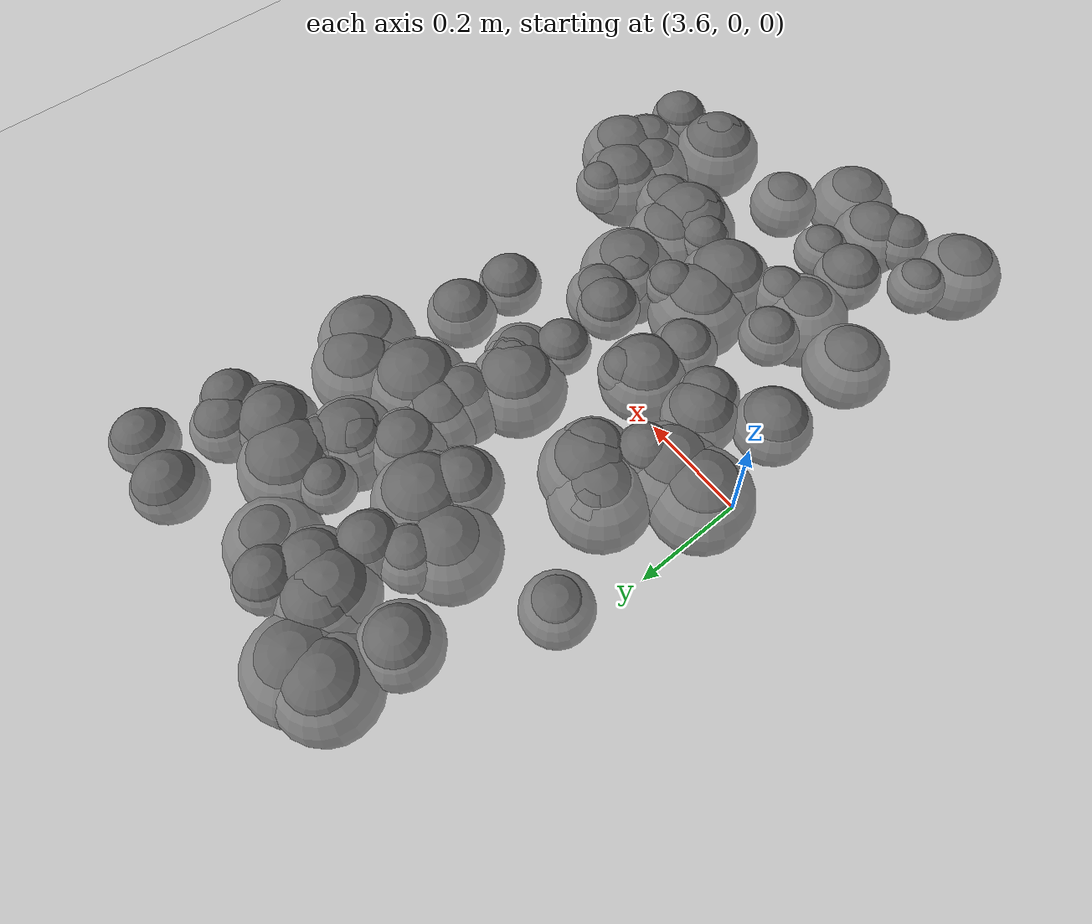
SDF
<sdf version="1.6">
 <world name="high_freq_world">
  <model name="ground_plane">
   <static>true</static>
   <link name="link">
    <collision name="collision">
     <geometry><plane><normal>0 0 1</normal><size>100 100</size></plane></geometry>
     <surface><friction><ode><mu>100.0</mu><mu2>100.0</mu2></ode></friction></surface>
    </collision>
    <visual name="visual">
     <geometry><plane><normal>0 0 1</normal><size>100 100</size></plane></geometry>
     <material><ambient>0.8 0.8 0.8 1</ambient><diffuse>0.8 0.8 0.8 1</diffuse></material>
    </visual>
   </link>
  </model>
  <model name="bump_0">
   <static>true</static>
   <pose>3.684 -0.187 -0.048 0 0 0</pose>
   <link name="link">
    <collision name="collision">
     <geometry><sphere><radius>0.074</radius></sphere></geometry>
     <surface><friction><ode><mu>100.0</mu><mu2>100.0</mu2></ode></friction></surface>
    </collision>
    <visual name="visual">
     <geometry><sphere><radius>0.074</radius></sphere></geometry>
     <material><ambient>0.3 0.3 0.3 1</ambient><diffuse>0.4 0.4 0.4 1</diffuse></material>
    </visual>
   </link>
  </model>
  <model name="bump_7">
   <static>true</static>
   <pose>3.665 0.326 -0.052 0 0 0</pose>
   <link name="link">
    <collision name="collision">
     <geometry><sphere><radius>0.065</radius></sphere></geometry>
     <surface><friction><ode><mu>100.0</mu><mu2>100.0</mu2></ode></friction></surface>
    </collision>
    <visual name="visual">
     <geometry><sphere><radius>0.065</radius></sphere></geometry>
     <material><ambient>0.3 0.3 0.3 1</ambient><diffuse>0.4 0.4 0.4 1</diffuse></material>
    </visual>
   </link>
  </model>
  <model name="bump_14">
   <static>true</static>
   <pose>4.027 -0.248 -0.026 0 0 0</pose>
   <link name="link">
    <collision name="collision">
     <geometry><sphere><radius>0.050</radius></sphere></geometry>
     <surface><friction><ode><mu>100.0</mu><mu2>100.0</mu2></ode></friction></surface>
    </collision>
    <visual name="visual">
     <geometry><sphere><radius>0.050</radius></sphere></geometry>
     <material><ambient>0.3 0.3 0.3 1</ambient><diffuse>0.4 0.4 0.4 1</diffuse></material>
    </visual>
   </link>
  </model>
  <model name="bump_15">
   <static>true</static>
   <pose>4.084 0.092 -0.048 0 0 0</pose>
   <link name="link">
    <collision name="collision">
     <geometry><sphere><radius>0.062</radius></sphere></geometry>
     <surface><friction><ode><mu>100.0</mu><mu2>100.0</mu2></ode></friction></surface>
    </collision>
    <visual name="visual">
     <geometry><sphere><radius>0.062</radius></sphere></geometry>
     <material><ambient>0.3 0.3 0.3 1</ambient><diffuse>0.4 0.4 0.4 1</diffuse></material>
    </visual>
   </link>
  </model>
  <model name="bump_40">
   <static>true</static>
   <pose>3.781 0.136 -0.082 0 0 0</pose>
   <link name="link">
    <collision name="collision">
     <geometry><sphere><radius>0.096</radius></sphere></geometry>
     <surface><friction><ode><mu>100.0</mu><mu2>100.0</mu2></ode></friction></surface>
    </collision>
    <visual name="visual">
     <geometry><sphere><radius>0.096</radius></sphere></geometry>
     <material><ambient>0.3 0.3 0.3 1</ambient><diffuse>0.4 0.4 0.4 1</diffuse></material>
    </visual>
   </link>
  </model>
  <model name="bump_43">
   <static>true</static>
   <pose>4.318 -0.318 -0.040 0 0 0</pose>
   <link name="link">
    <collision name="collision">
     <geometry><sphere><radius>0.056</radius></sphere></geometry>
     <surface><friction><ode><mu>100.0</mu><mu2>100.0</mu2></ode></friction></surface>
    </collision>
    <visual name="visual">
     <geometry><sphere><radius>0.056</radius></sphere></geometry>
     <material><ambient>0.3 0.3 0.3 1</ambient><diffuse>0.4 0.4 0.4 1</diffuse></material>
    </visual>
   </link>
  </model>
  <model name="bump_53">
   <static>true</static>
   <pose>3.889 0.459 -0.047 0 0 0</pose>
   <link name="link">
    <collision name="collision">
     <geometry><sphere><radius>0.061</radius></sphere></geometry>
     <surface><friction><ode><mu>100.0</mu><mu2>100.0</mu2></ode></friction></surface>
    </collision>
    <visual name="visual">
     <geometry><sphere><radius>0.061</radius></sphere></geometry>
     <material><ambient>0.3 0.3 0.3 1</ambient><diffuse>0.4 0.4 0.4 1</diffuse></material>
    </visual>
   </link>
  </model>
  <model name="bump_62">
   <static>true</static>
   <pose>3.907 -0.548 -0.041 0 0 0</pose>
   <link name="link">
    <collision name="collision">
     <geometry><sphere><radius>0.054</radius></sphere></geometry>
     <surface><friction><ode><mu>100.0</mu><mu2>100.0</mu2></ode></friction></surface>
    </collision>
    <visual name="visual">
     <geometry><sphere><radius>0.054</radius></sphere></geometry>
     <material><ambient>0.3 0.3 0.3 1</ambient><diffuse>0.4 0.4 0.4 1</diffuse></material>
    </visual>
   </link>
  </model>
  <model name="bump_71">
   <static>true</static>
   <pose>4.104 -0.136 -0.054 0 0 0</pose>
   <link name="link">
    <collision name="collision">
     <geometry><sphere><radius>0.070</radius></sphere></geometry>
     <surface><friction><ode><mu>100.0</mu><mu2>100.0</mu2></ode></friction></surface>
    </collision>
    <visual name="visual">
     <geometry><sphere><radius>0.070</radius></sphere></geometry>
     <material><ambient>0.3 0.3 0.3 1</ambient><diffuse>0.4 0.4 0.4 1</diffuse></material>
    </visual>
   </link>
  </model>
  <model name="bump_84">
   <static>true</static>
   <pose>4.164 0.464 -0.057 0 0 0</pose>
   <link name="link">
    <collision name="collision">
     <geometry><sphere><radius>0.067</radius></sphere></geometry>
     <surface><friction><ode><mu>100.0</mu><mu2>100.0</mu2></ode></friction></surface>
    </collision>
    <visual name="visual">
     <geometry><sphere><radius>0.067</radius></sphere></geometry>
     <material><ambient>0.3 0.3 0.3 1</ambient><diffuse>0.4 0.4 0.4 1</diffuse></material>
    </visual>
   </link>
  </model>
  <model name="bump_88">
   <static>true</static>
   <pose>3.827 -0.537 -0.037 0 0 0</pose>
   <link name="link">
    <collision name="collision">
     <geometry><sphere><radius>0.066</radius></sphere></geometry>
     <surface><friction><ode><mu>100.0</mu><mu2>100.0</mu2></ode></friction></surface>
    </collision>
    <visual name="visual">
     <geometry><sphere><radius>0.066</radius></sphere></geometry>
     <material><ambient>0.3 0.3 0.3 1</ambient><diffuse>0.4 0.4 0.4 1</diffuse></material>
    </visual>
   </link>
  </model>
  <model name="bump_93">
   <static>true</static>
   <pose>3.948 0.502 -0.041 0 0 0</pose>
   <link name="link">
    <collision name="collision">
     <geometry><sphere><radius>0.063</radius></sphere></geometry>
     <surface><friction><ode><mu>100.0</mu><mu2>100.0</mu2></ode></friction></surface>
    </collision>
    <visual name="visual">
     <geometry><sphere><radius>0.063</radius></sphere></geometry>
     <material><ambient>0.3 0.3 0.3 1</ambient><diffuse>0.4 0.4 0.4 1</diffuse></material>
    </visual>
   </link>
  </model>
  <model name="bump_97">
   <static>true</static>
   <pose>4.083 0.095 -0.041 0 0 0</pose>
   <link name="link">
    <collision name="collision">
     <geometry><sphere><radius>0.056</radius></sphere></geometry>
     <surface><friction><ode><mu>100.0</mu><mu2>100.0</mu2></ode></friction></surface>
    </collision>
    <visual name="visual">
     <geometry><sphere><radius>0.056</radius></sphere></geometry>
     <material><ambient>0.3 0.3 0.3 1</ambient><diffuse>0.4 0.4 0.4 1</diffuse></material>
    </visual>
   </link>
  </model>
  <model name="bump_99">
   <static>true</static>
   <pose>4.136 0.411 -0.049 0 0 0</pose>
   <link name="link">
    <collision name="collision">
     <geometry><sphere><radius>0.067</radius></sphere></geometry>
     <surface><friction><ode><mu>100.0</mu><mu2>100.0</mu2></ode></friction></surface>
    </collision>
    <visual name="visual">
     <geometry><sphere><radius>0.067</radius></sphere></geometry>
     <material><ambient>0.3 0.3 0.3 1</ambient><diffuse>0.4 0.4 0.4 1</diffuse></material>
    </visual>
   </link>
  </model>
  <model name="bump_112">
   <static>true</static>
   <pose>3.829 -0.418 -0.081 0 0 0</pose>
   <link name="link">
    <collision name="collision">
     <geometry><sphere><radius>0.093</radius></sphere></geometry>
     <surface><friction><ode><mu>100.0</mu><mu2>100.0</mu2></ode></friction></surface>
    </collision>
    <visual name="visual">
     <geometry><sphere><radius>0.093</radius></sphere></geometry>
     <material><ambient>0.3 0.3 0.3 1</ambient><diffuse>0.4 0.4 0.4 1</diffuse></material>
    </visual>
   </link>
  </model>
  <model name="bump_117">
   <static>true</static>
   <pose>4.138 -0.346 -0.071 0 0 0</pose>
   <link name="link">
    <collision name="collision">
     <geometry><sphere><radius>0.088</radius></sphere></geometry>
     <surface><friction><ode><mu>100.0</mu><mu2>100.0</mu2></ode></friction></surface>
    </collision>
    <visual name="visual">
     <geometry><sphere><radius>0.088</radius></sphere></geometry>
     <material><ambient>0.3 0.3 0.3 1</ambient><diffuse>0.4 0.4 0.4 1</diffuse></material>
    </visual>
   </link>
  </model>
  <model name="bump_124">
   <static>true</static>
   <pose>4.051 0.113 -0.070 0 0 0</pose>
   <link name="link">
    <collision name="collision">
     <geometry><sphere><radius>0.094</radius></sphere></geometry>
     <surface><friction><ode><mu>100.0</mu><mu2>100.0</mu2></ode></friction></surface>
    </collision>
    <visual name="visual">
     <geometry><sphere><radius>0.094</radius></sphere></geometry>
     <material><ambient>0.3 0.3 0.3 1</ambient><diffuse>0.4 0.4 0.4 1</diffuse></material>
    </visual>
   </link>
  </model>
  <model name="bump_125">
   <static>true</static>
   <pose>3.825 -0.318 -0.040 0 0 0</pose>
   <link name="link">
    <collision name="collision">
     <geometry><sphere><radius>0.058</radius></sphere></geometry>
     <surface><friction><ode><mu>100.0</mu><mu2>100.0</mu2></ode></friction></surface>
    </collision>
    <visual name="visual">
     <geometry><sphere><radius>0.058</radius></sphere></geometry>
     <material><ambient>0.3 0.3 0.3 1</ambient><diffuse>0.4 0.4 0.4 1</diffuse></material>
    </visual>
   </link>
  </model>
  <model name="bump_127">
   <static>true</static>
   <pose>4.087 0.259 -0.064 0 0 0</pose>
   <link name="link">
    <collision name="collision">
     <geometry><sphere><radius>0.078</radius></sphere></geometry>
     <surface><friction><ode><mu>100.0</mu><mu2>100.0</mu2></ode></friction></surface>
    </collision>
    <visual name="visual">
     <geometry><sphere><radius>0.078</radius></sphere></geometry>
     <material><ambient>0.3 0.3 0.3 1</ambient><diffuse>0.4 0.4 0.4 1</diffuse></material>
    </visual>
   </link>
  </model>
  <model name="bump_128">
   <static>true</static>
   <pose>4.254 -0.588 -0.050 0 0 0</pose>
   <link name="link">
    <collision name="collision">
     <geometry><sphere><radius>0.080</radius></sphere></geometry>
     <surface><friction><ode><mu>100.0</mu><mu2>100.0</mu2></ode></friction></surface>
    </collision>
    <visual name="visual">
     <geometry><sphere><radius>0.080</radius></sphere></geometry>
     <material><ambient>0.3 0.3 0.3 1</ambient><diffuse>0.4 0.4 0.4 1</diffuse></material>
    </visual>
   </link>
  </model>
  <model name="bump_139">
   <static>true</static>
   <pose>4.129 -0.228 -0.083 0 0 0</pose>
   <link name="link">
    <collision name="collision">
     <geometry><sphere><radius>0.100</radius></sphere></geometry>
     <surface><friction><ode><mu>100.0</mu><mu2>100.0</mu2></ode></friction></surface>
    </collision>
    <visual name="visual">
     <geometry><sphere><radius>0.100</radius></sphere></geometry>
     <material><ambient>0.3 0.3 0.3 1</ambient><diffuse>0.4 0.4 0.4 1</diffuse></material>
    </visual>
   </link>
  </model>
  <model name="bump_140">
   <static>true</static>
   <pose>3.969 0.381 -0.069 0 0 0</pose>
   <link name="link">
    <collision name="collision">
     <geometry><sphere><radius>0.095</radius></sphere></geometry>
     <surface><friction><ode><mu>100.0</mu><mu2>100.0</mu2></ode></friction></surface>
    </collision>
    <visual name="visual">
     <geometry><sphere><radius>0.095</radius></sphere></geometry>
     <material><ambient>0.3 0.3 0.3 1</ambient><diffuse>0.4 0.4 0.4 1</diffuse></material>
    </visual>
   </link>
  </model>
  <model name="bump_155">
   <static>true</static>
   <pose>3.799 0.681 -0.070 0 0 0</pose>
   <link name="link">
    <collision name="collision">
     <geometry><sphere><radius>0.092</radius></sphere></geometry>
     <surface><friction><ode><mu>100.0</mu><mu2>100.0</mu2></ode></friction></surface>
    </collision>
    <visual name="visual">
     <geometry><sphere><radius>0.092</radius></sphere></geometry>
     <material><ambient>0.3 0.3 0.3 1</ambient><diffuse>0.4 0.4 0.4 1</diffuse></material>
    </visual>
   </link>
  </model>
  <model name="bump_158">
   <static>true</static>
   <pose>3.668 0.001 -0.079 0 0 0</pose>
   <link name="link">
    <collision name="collision">
     <geometry><sphere><radius>0.099</radius></sphere></geometry>
     <surface><friction><ode><mu>100.0</mu><mu2>100.0</mu2></ode></friction></surface>
    </collision>
    <visual name="visual">
     <geometry><sphere><radius>0.099</radius></sphere></geometry>
     <material><ambient>0.3 0.3 0.3 1</ambient><diffuse>0.4 0.4 0.4 1</diffuse></material>
    </visual>
   </link>
  </model>
  <model name="bump_159">
   <static>true</static>
   <pose>4.070 0.345 -0.057 0 0 0</pose>
   <link name="link">
    <collision name="collision">
     <geometry><sphere><radius>0.075</radius></sphere></geometry>
     <surface><friction><ode><mu>100.0</mu><mu2>100.0</mu2></ode></friction></surface>
    </collision>
    <visual name="visual">
     <geometry><sphere><radius>0.075</radius></sphere></geometry>
     <material><ambient>0.3 0.3 0.3 1</ambient><diffuse>0.4 0.4 0.4 1</diffuse></material>
    </visual>
   </link>
  </model>
  <model name="bump_174">
   <static>true</static>
   <pose>3.783 0.033 -0.032 0 0 0</pose>
   <link name="link">
    <collision name="collision">
     <geometry><sphere><radius>0.056</radius></sphere></geometry>
     <surface><friction><ode><mu>100.0</mu><mu2>100.0</mu2></ode></friction></surface>
    </collision>
    <visual name="visual">
     <geometry><sphere><radius>0.056</radius></sphere></geometry>
     <material><ambient>0.3 0.3 0.3 1</ambient><diffuse>0.4 0.4 0.4 1</diffuse></material>
    </visual>
   </link>
  </model>
  <model name="bump_175">
   <static>true</static>
   <pose>4.066 -0.121 -0.033 0 0 0</pose>
   <link name="link">
    <collision name="collision">
     <geometry><sphere><radius>0.062</radius></sphere></geometry>
     <surface><friction><ode><mu>100.0</mu><mu2>100.0</mu2></ode></friction></surface>
    </collision>
    <visual name="visual">
     <geometry><sphere><radius>0.062</radius></sphere></geometry>
     <material><ambient>0.3 0.3 0.3 1</ambient><diffuse>0.4 0.4 0.4 1</diffuse></material>
    </visual>
   </link>
  </model>
  <model name="bump_178">
   <static>true</static>
   <pose>3.904 -0.172 -0.045 0 0 0</pose>
   <link name="link">
    <collision name="collision">
     <geometry><sphere><radius>0.064</radius></sphere></geometry>
     <surface><friction><ode><mu>100.0</mu><mu2>100.0</mu2></ode></friction></surface>
    </collision>
    <visual name="visual">
     <geometry><sphere><radius>0.064</radius></sphere></geometry>
     <material><ambient>0.3 0.3 0.3 1</ambient><diffuse>0.4 0.4 0.4 1</diffuse></material>
    </visual>
   </link>
  </model>
  <model name="bump_180">
   <static>true</static>
   <pose>4.049 0.005 -0.028 0 0 0</pose>
   <link name="link">
    <collision name="collision">
     <geometry><sphere><radius>0.054</radius></sphere></geometry>
     <surface><friction><ode><mu>100.0</mu><mu2>100.0</mu2></ode></friction></surface>
    </collision>
    <visual name="visual">
     <geometry><sphere><radius>0.054</radius></sphere></geometry>
     <material><ambient>0.3 0.3 0.3 1</ambient><diffuse>0.4 0.4 0.4 1</diffuse></material>
    </visual>
   </link>
  </model>
  <model name="bump_182">
   <static>true</static>
   <pose>4.251 0.504 -0.046 0 0 0</pose>
   <link name="link">
    <collision name="collision">
     <geometry><sphere><radius>0.076</radius></sphere></geometry>
     <surface><friction><ode><mu>100.0</mu><mu2>100.0</mu2></ode></friction></surface>
    </collision>
    <visual name="visual">
     <geometry><sphere><radius>0.076</radius></sphere></geometry>
     <material><ambient>0.3 0.3 0.3 1</ambient><diffuse>0.4 0.4 0.4 1</diffuse></material>
    </visual>
   </link>
  </model>
  <model name="bump_185">
   <static>true</static>
   <pose>4.232 -0.009 -0.033 0 0 0</pose>
   <link name="link">
    <collision name="collision">
     <geometry><sphere><radius>0.062</radius></sphere></geometry>
     <surface><friction><ode><mu>100.0</mu><mu2>100.0</mu2></ode></friction></surface>
    </collision>
    <visual name="visual">
     <geometry><sphere><radius>0.062</radius></sphere></geometry>
     <material><ambient>0.3 0.3 0.3 1</ambient><diffuse>0.4 0.4 0.4 1</diffuse></material>
    </visual>
   </link>
  </model>
  <model name="bump_189">
   <static>true</static>
   <pose>4.371 0.703 -0.040 0 0 0</pose>
   <link name="link">
    <collision name="collision">
     <geometry><sphere><radius>0.061</radius></sphere></geometry>
     <surface><friction><ode><mu>100.0</mu><mu2>100.0</mu2></ode></friction></surface>
    </collision>
    <visual name="visual">
     <geometry><sphere><radius>0.061</radius></sphere></geometry>
     <material><ambient>0.3 0.3 0.3 1</ambient><diffuse>0.4 0.4 0.4 1</diffuse></material>
    </visual>
   </link>
  </model>
  <model name="bump_199">
   <static>true</static>
   <pose>4.307 0.575 -0.047 0 0 0</pose>
   <link name="link">
    <collision name="collision">
     <geometry><sphere><radius>0.066</radius></sphere></geometry>
     <surface><friction><ode><mu>100.0</mu><mu2>100.0</mu2></ode></friction></surface>
    </collision>
    <visual name="visual">
     <geometry><sphere><radius>0.066</radius></sphere></geometry>
     <material><ambient>0.3 0.3 0.3 1</ambient><diffuse>0.4 0.4 0.4 1</diffuse></material>
    </visual>
   </link>
  </model>
  <model name="bump_201">
   <static>true</static>
   <pose>3.865 0.398 -0.075 0 0 0</pose>
   <link name="link">
    <collision name="collision">
     <geometry><sphere><radius>0.091</radius></sphere></geometry>
     <surface><friction><ode><mu>100.0</mu><mu2>100.0</mu2></ode></friction></surface>
    </collision>
    <visual name="visual">
     <geometry><sphere><radius>0.091</radius></sphere></geometry>
     <material><ambient>0.3 0.3 0.3 1</ambient><diffuse>0.4 0.4 0.4 1</diffuse></material>
    </visual>
   </link>
  </model>
  <model name="bump_202">
   <static>true</static>
   <pose>3.833 0.121 -0.071 0 0 0</pose>
   <link name="link">
    <collision name="collision">
     <geometry><sphere><radius>0.092</radius></sphere></geometry>
     <surface><friction><ode><mu>100.0</mu><mu2>100.0</mu2></ode></friction></surface>
    </collision>
    <visual name="visual">
     <geometry><sphere><radius>0.092</radius></sphere></geometry>
     <material><ambient>0.3 0.3 0.3 1</ambient><diffuse>0.4 0.4 0.4 1</diffuse></material>
    </visual>
   </link>
  </model>
  <model name="bump_229">
   <static>true</static>
   <pose>3.972 -0.273 -0.078 0 0 0</pose>
   <link name="link">
    <collision name="collision">
     <geometry><sphere><radius>0.099</radius></sphere></geometry>
     <surface><friction><ode><mu>100.0</mu><mu2>100.0</mu2></ode></friction></surface>
    </collision>
    <visual name="visual">
     <geometry><sphere><radius>0.099</radius></sphere></geometry>
     <material><ambient>0.3 0.3 0.3 1</ambient><diffuse>0.4 0.4 0.4 1</diffuse></material>
    </visual>
   </link>
  </model>
  <model name="bump_232">
   <static>true</static>
   <pose>4.001 0.664 -0.034 0 0 0</pose>
   <link name="link">
    <collision name="collision">
     <geometry><sphere><radius>0.060</radius></sphere></geometry>
     <surface><friction><ode><mu>100.0</mu><mu2>100.0</mu2></ode></friction></surface>
    </collision>
    <visual name="visual">
     <geometry><sphere><radius>0.060</radius></sphere></geometry>
     <material><ambient>0.3 0.3 0.3 1</ambient><diffuse>0.4 0.4 0.4 1</diffuse></material>
    </visual>
   </link>
  </model>
  <model name="bump_235">
   <static>true</static>
   <pose>4.314 -0.374 -0.067 0 0 0</pose>
   <link name="link">
    <collision name="collision">
     <geometry><sphere><radius>0.089</radius></sphere></geometry>
     <surface><friction><ode><mu>100.0</mu><mu2>100.0</mu2></ode></friction></surface>
    </collision>
    <visual name="visual">
     <geometry><sphere><radius>0.089</radius></sphere></geometry>
     <material><ambient>0.3 0.3 0.3 1</ambient><diffuse>0.4 0.4 0.4 1</diffuse></material>
    </visual>
   </link>
  </model>
  <model name="bump_241">
   <static>true</static>
   <pose>3.702 -0.731 -0.072 0 0 0</pose>
   <link name="link">
    <collision name="collision">
     <geometry><sphere><radius>0.088</radius></sphere></geometry>
     <surface><friction><ode><mu>100.0</mu><mu2>100.0</mu2></ode></friction></surface>
    </collision>
    <visual name="visual">
     <geometry><sphere><radius>0.088</radius></sphere></geometry>
     <material><ambient>0.3 0.3 0.3 1</ambient><diffuse>0.4 0.4 0.4 1</diffuse></material>
    </visual>
   </link>
  </model>
  <model name="bump_244">
   <static>true</static>
   <pose>3.921 0.594 -0.054 0 0 0</pose>
   <link name="link">
    <collision name="collision">
     <geometry><sphere><radius>0.083</radius></sphere></geometry>
     <surface><friction><ode><mu>100.0</mu><mu2>100.0</mu2></ode></friction></surface>
    </collision>
    <visual name="visual">
     <geometry><sphere><radius>0.083</radius></sphere></geometry>
     <material><ambient>0.3 0.3 0.3 1</ambient><diffuse>0.4 0.4 0.4 1</diffuse></material>
    </visual>
   </link>
  </model>
  <model name="bump_245">
   <static>true</static>
   <pose>3.914 -0.080 -0.060 0 0 0</pose>
   <link name="link">
    <collision name="collision">
     <geometry><sphere><radius>0.086</radius></sphere></geometry>
     <surface><friction><ode><mu>100.0</mu><mu2>100.0</mu2></ode></friction></surface>
    </collision>
    <visual name="visual">
     <geometry><sphere><radius>0.086</radius></sphere></geometry>
     <material><ambient>0.3 0.3 0.3 1</ambient><diffuse>0.4 0.4 0.4 1</diffuse></material>
    </visual>
   </link>
  </model>
  <model name="bump_248">
   <static>true</static>
   <pose>4.174 0.523 -0.072 0 0 0</pose>
   <link name="link">
    <collision name="collision">
     <geometry><sphere><radius>0.099</radius></sphere></geometry>
     <surface><friction><ode><mu>100.0</mu><mu2>100.0</mu2></ode></friction></surface>
    </collision>
    <visual name="visual">
     <geometry><sphere><radius>0.099</radius></sphere></geometry>
     <material><ambient>0.3 0.3 0.3 1</ambient><diffuse>0.4 0.4 0.4 1</diffuse></material>
    </visual>
   </link>
  </model>
  <model name="bump_253">
   <static>true</static>
   <pose>3.781 -0.097 -0.045 0 0 0</pose>
   <link name="link">
    <collision name="collision">
     <geometry><sphere><radius>0.072</radius></sphere></geometry>
     <surface><friction><ode><mu>100.0</mu><mu2>100.0</mu2></ode></friction></surface>
    </collision>
    <visual name="visual">
     <geometry><sphere><radius>0.072</radius></sphere></geometry>
     <material><ambient>0.3 0.3 0.3 1</ambient><diffuse>0.4 0.4 0.4 1</diffuse></material>
    </visual>
   </link>
  </model>
  <model name="bump_256">
   <static>true</static>
   <pose>4.124 -0.395 -0.066 0 0 0</pose>
   <link name="link">
    <collision name="collision">
     <geometry><sphere><radius>0.092</radius></sphere></geometry>
     <surface><friction><ode><mu>100.0</mu><mu2>100.0</mu2></ode></friction></surface>
    </collision>
    <visual name="visual">
     <geometry><sphere><radius>0.092</radius></sphere></geometry>
     <material><ambient>0.3 0.3 0.3 1</ambient><diffuse>0.4 0.4 0.4 1</diffuse></material>
    </visual>
   </link>
  </model>
  <model name="bump_264">
   <static>true</static>
   <pose>4.072 -0.377 -0.027 0 0 0</pose>
   <link name="link">
    <collision name="collision">
     <geometry><sphere><radius>0.051</radius></sphere></geometry>
     <surface><friction><ode><mu>100.0</mu><mu2>100.0</mu2></ode></friction></surface>
    </collision>
    <visual name="visual">
     <geometry><sphere><radius>0.051</radius></sphere></geometry>
     <material><ambient>0.3 0.3 0.3 1</ambient><diffuse>0.4 0.4 0.4 1</diffuse></material>
    </visual>
   </link>
  </model>
  <model name="bump_266">
   <static>true</static>
   <pose>3.980 -0.353 -0.064 0 0 0</pose>
   <link name="link">
    <collision name="collision">
     <geometry><sphere><radius>0.093</radius></sphere></geometry>
     <surface><friction><ode><mu>100.0</mu><mu2>100.0</mu2></ode></friction></surface>
    </collision>
    <visual name="visual">
     <geometry><sphere><radius>0.093</radius></sphere></geometry>
     <material><ambient>0.3 0.3 0.3 1</ambient><diffuse>0.4 0.4 0.4 1</diffuse></material>
    </visual>
   </link>
  </model>
  <model name="bump_271">
   <static>true</static>
   <pose>3.693 -0.396 -0.065 0 0 0</pose>
   <link name="link">
    <collision name="collision">
     <geometry><sphere><radius>0.082</radius></sphere></geometry>
     <surface><friction><ode><mu>100.0</mu><mu2>100.0</mu2></ode></friction></surface>
    </collision>
    <visual name="visual">
     <geometry><sphere><radius>0.082</radius></sphere></geometry>
     <material><ambient>0.3 0.3 0.3 1</ambient><diffuse>0.4 0.4 0.4 1</diffuse></material>
    </visual>
   </link>
  </model>
  <model name="bump_275">
   <static>true</static>
   <pose>4.087 0.497 -0.037 0 0 0</pose>
   <link name="link">
    <collision name="collision">
     <geometry><sphere><radius>0.051</radius></sphere></geometry>
     <surface><friction><ode><mu>100.0</mu><mu2>100.0</mu2></ode></friction></surface>
    </collision>
    <visual name="visual">
     <geometry><sphere><radius>0.051</radius></sphere></geometry>
     <material><ambient>0.3 0.3 0.3 1</ambient><diffuse>0.4 0.4 0.4 1</diffuse></material>
    </visual>
   </link>
  </model>
  <model name="bump_281">
   <static>true</static>
   <pose>4.092 0.072 -0.063 0 0 0</pose>
   <link name="link">
    <collision name="collision">
     <geometry><sphere><radius>0.074</radius></sphere></geometry>
     <surface><friction><ode><mu>100.0</mu><mu2>100.0</mu2></ode></friction></surface>
    </collision>
    <visual name="visual">
     <geometry><sphere><radius>0.074</radius></sphere></geometry>
     <material><ambient>0.3 0.3 0.3 1</ambient><diffuse>0.4 0.4 0.4 1</diffuse></material>
    </visual>
   </link>
  </model>
  <model name="bump_284">
   <static>true</static>
   <pose>3.942 0.314 -0.049 0 0 0</pose>
   <link name="link">
    <collision name="collision">
     <geometry><sphere><radius>0.072</radius></sphere></geometry>
     <surface><friction><ode><mu>100.0</mu><mu2>100.0</mu2></ode></friction></surface>
    </collision>
    <visual name="visual">
     <geometry><sphere><radius>0.072</radius></sphere></geometry>
     <material><ambient>0.3 0.3 0.3 1</ambient><diffuse>0.4 0.4 0.4 1</diffuse></material>
    </visual>
   </link>
  </model>
  <model name="bump_286">
   <static>true</static>
   <pose>3.796 -0.130 -0.034 0 0 0</pose>
   <link name="link">
    <collision name="collision">
     <geometry><sphere><radius>0.060</radius></sphere></geometry>
     <surface><friction><ode><mu>100.0</mu><mu2>100.0</mu2></ode></friction></surface>
    </collision>
    <visual name="visual">
     <geometry><sphere><radius>0.060</radius></sphere></geometry>
     <material><ambient>0.3 0.3 0.3 1</ambient><diffuse>0.4 0.4 0.4 1</diffuse></material>
    </visual>
   </link>
  </model>
  <model name="bump_294">
   <static>true</static>
   <pose>3.873 -0.662 -0.057 0 0 0</pose>
   <link name="link">
    <collision name="collision">
     <geometry><sphere><radius>0.077</radius></sphere></geometry>
     <surface><friction><ode><mu>100.0</mu><mu2>100.0</mu2></ode></friction></surface>
    </collision>
    <visual name="visual">
     <geometry><sphere><radius>0.077</radius></sphere></geometry>
     <material><ambient>0.3 0.3 0.3 1</ambient><diffuse>0.4 0.4 0.4 1</diffuse></material>
    </visual>
   </link>
  </model>
  <model name="bump_295">
   <static>true</static>
   <pose>3.859 0.699 -0.082 0 0 0</pose>
   <link name="link">
    <collision name="collision">
     <geometry><sphere><radius>0.098</radius></sphere></geometry>
     <surface><friction><ode><mu>100.0</mu><mu2>100.0</mu2></ode></friction></surface>
    </collision>
    <visual name="visual">
     <geometry><sphere><radius>0.098</radius></sphere></geometry>
     <material><ambient>0.3 0.3 0.3 1</ambient><diffuse>0.4 0.4 0.4 1</diffuse></material>
    </visual>
   </link>
  </model>
  <model name="bump_297">
   <static>true</static>
   <pose>3.726 -0.628 -0.041 0 0 0</pose>
   <link name="link">
    <collision name="collision">
     <geometry><sphere><radius>0.055</radius></sphere></geometry>
     <surface><friction><ode><mu>100.0</mu><mu2>100.0</mu2></ode></friction></surface>
    </collision>
    <visual name="visual">
     <geometry><sphere><radius>0.055</radius></sphere></geometry>
     <material><ambient>0.3 0.3 0.3 1</ambient><diffuse>0.4 0.4 0.4 1</diffuse></material>
    </visual>
   </link>
  </model>
  <model name="bump_304">
   <static>true</static>
   <pose>3.964 -0.707 -0.071 0 0 0</pose>
   <link name="link">
    <collision name="collision">
     <geometry><sphere><radius>0.086</radius></sphere></geometry>
     <surface><friction><ode><mu>100.0</mu><mu2>100.0</mu2></ode></friction></surface>
    </collision>
    <visual name="visual">
     <geometry><sphere><radius>0.086</radius></sphere></geometry>
     <material><ambient>0.3 0.3 0.3 1</ambient><diffuse>0.4 0.4 0.4 1</diffuse></material>
    </visual>
   </link>
  </model>
  <model name="bump_312">
   <static>true</static>
   <pose>4.302 -0.441 -0.070 0 0 0</pose>
   <link name="link">
    <collision name="collision">
     <geometry><sphere><radius>0.082</radius></sphere></geometry>
     <surface><friction><ode><mu>100.0</mu><mu2>100.0</mu2></ode></friction></surface>
    </collision>
    <visual name="visual">
     <geometry><sphere><radius>0.082</radius></sphere></geometry>
     <material><ambient>0.3 0.3 0.3 1</ambient><diffuse>0.4 0.4 0.4 1</diffuse></material>
    </visual>
   </link>
  </model>
  <model name="bump_318">
   <static>true</static>
   <pose>4.361 -0.574 -0.032 0 0 0</pose>
   <link name="link">
    <collision name="collision">
     <geometry><sphere><radius>0.060</radius></sphere></geometry>
     <surface><friction><ode><mu>100.0</mu><mu2>100.0</mu2></ode></friction></surface>
    </collision>
    <visual name="visual">
     <geometry><sphere><radius>0.060</radius></sphere></geometry>
     <material><ambient>0.3 0.3 0.3 1</ambient><diffuse>0.4 0.4 0.4 1</diffuse></material>
    </visual>
   </link>
  </model>
  <model name="bump_321">
   <static>true</static>
   <pose>4.085 0.210 -0.066 0 0 0</pose>
   <link name="link">
    <collision name="collision">
     <geometry><sphere><radius>0.078</radius></sphere></geometry>
     <surface><friction><ode><mu>100.0</mu><mu2>100.0</mu2></ode></friction></surface>
    </collision>
    <visual name="visual">
     <geometry><sphere><radius>0.078</radius></sphere></geometry>
     <material><ambient>0.3 0.3 0.3 1</ambient><diffuse>0.4 0.4 0.4 1</diffuse></material>
    </visual>
   </link>
  </model>
  <model name="bump_323">
   <static>true</static>
   <pose>3.844 0.102 -0.054 0 0 0</pose>
   <link name="link">
    <collision name="collision">
     <geometry><sphere><radius>0.074</radius></sphere></geometry>
     <surface><friction><ode><mu>100.0</mu><mu2>100.0</mu2></ode></friction></surface>
    </collision>
    <visual name="visual">
     <geometry><sphere><radius>0.074</radius></sphere></geometry>
     <material><ambient>0.3 0.3 0.3 1</ambient><diffuse>0.4 0.4 0.4 1</diffuse></material>
    </visual>
   </link>
  </model>
  <model name="bump_325">
   <static>true</static>
   <pose>4.251 -0.585 -0.064 0 0 0</pose>
   <link name="link">
    <collision name="collision">
     <geometry><sphere><radius>0.093</radius></sphere></geometry>
     <surface><friction><ode><mu>100.0</mu><mu2>100.0</mu2></ode></friction></surface>
    </collision>
    <visual name="visual">
     <geometry><sphere><radius>0.093</radius></sphere></geometry>
     <material><ambient>0.3 0.3 0.3 1</ambient><diffuse>0.4 0.4 0.4 1</diffuse></material>
    </visual>
   </link>
  </model>
  <model name="bump_334">
   <static>true</static>
   <pose>3.915 0.615 -0.057 0 0 0</pose>
   <link name="link">
    <collision name="collision">
     <geometry><sphere><radius>0.082</radius></sphere></geometry>
     <surface><friction><ode><mu>100.0</mu><mu2>100.0</mu2></ode></friction></surface>
    </collision>
    <visual name="visual">
     <geometry><sphere><radius>0.082</radius></sphere></geometry>
     <material><ambient>0.3 0.3 0.3 1</ambient><diffuse>0.4 0.4 0.4 1</diffuse></material>
    </visual>
   </link>
  </model>
  <model name="bump_342">
   <static>true</static>
   <pose>4.052 -0.591 -0.058 0 0 0</pose>
   <link name="link">
    <collision name="collision">
     <geometry><sphere><radius>0.069</radius></sphere></geometry>
     <surface><friction><ode><mu>100.0</mu><mu2>100.0</mu2></ode></friction></surface>
    </collision>
    <visual name="visual">
     <geometry><sphere><radius>0.069</radius></sphere></geometry>
     <material><ambient>0.3 0.3 0.3 1</ambient><diffuse>0.4 0.4 0.4 1</diffuse></material>
    </visual>
   </link>
  </model>
  <model name="bump_351">
   <static>true</static>
   <pose>4.260 0.711 -0.040 0 0 0</pose>
   <link name="link">
    <collision name="collision">
     <geometry><sphere><radius>0.066</radius></sphere></geometry>
     <surface><friction><ode><mu>100.0</mu><mu2>100.0</mu2></ode></friction></surface>
    </collision>
    <visual name="visual">
     <geometry><sphere><radius>0.066</radius></sphere></geometry>
     <material><ambient>0.3 0.3 0.3 1</ambient><diffuse>0.4 0.4 0.4 1</diffuse></material>
    </visual>
   </link>
  </model>
  <model name="bump_360">
   <static>true</static>
   <pose>3.884 -0.406 -0.045 0 0 0</pose>
   <link name="link">
    <collision name="collision">
     <geometry><sphere><radius>0.058</radius></sphere></geometry>
     <surface><friction><ode><mu>100.0</mu><mu2>100.0</mu2></ode></friction></surface>
    </collision>
    <visual name="visual">
     <geometry><sphere><radius>0.058</radius></sphere></geometry>
     <material><ambient>0.3 0.3 0.3 1</ambient><diffuse>0.4 0.4 0.4 1</diffuse></material>
    </visual>
   </link>
  </model>
  <model name="bump_365">
   <static>true</static>
   <pose>3.975 0.594 -0.053 0 0 0</pose>
   <link name="link">
    <collision name="collision">
     <geometry><sphere><radius>0.075</radius></sphere></geometry>
     <surface><friction><ode><mu>100.0</mu><mu2>100.0</mu2></ode></friction></surface>
    </collision>
    <visual name="visual">
     <geometry><sphere><radius>0.075</radius></sphere></geometry>
     <material><ambient>0.3 0.3 0.3 1</ambient><diffuse>0.4 0.4 0.4 1</diffuse></material>
    </visual>
   </link>
  </model>
  <model name="bump_369">
   <static>true</static>
   <pose>4.068 0.624 -0.079 0 0 0</pose>
   <link name="link">
    <collision name="collision">
     <geometry><sphere><radius>0.089</radius></sphere></geometry>
     <surface><friction><ode><mu>100.0</mu><mu2>100.0</mu2></ode></friction></surface>
    </collision>
    <visual name="visual">
     <geometry><sphere><radius>0.089</radius></sphere></geometry>
     <material><ambient>0.3 0.3 0.3 1</ambient><diffuse>0.4 0.4 0.4 1</diffuse></material>
    </visual>
   </link>
  </model>
  <model name="bump_376">
   <static>true</static>
   <pose>4.147 0.414 -0.070 0 0 0</pose>
   <link name="link">
    <collision name="collision">
     <geometry><sphere><radius>0.089</radius></sphere></geometry>
     <surface><friction><ode><mu>100.0</mu><mu2>100.0</mu2></ode></friction></surface>
    </collision>
    <visual name="visual">
     <geometry><sphere><radius>0.089</radius></sphere></geometry>
     <material><ambient>0.3 0.3 0.3 1</ambient><diffuse>0.4 0.4 0.4 1</diffuse></material>
    </visual>
   </link>
  </model>
  <model name="bump_396">
   <static>true</static>
   <pose>3.821 -0.685 -0.038 0 0 0</pose>
   <link name="link">
    <collision name="collision">
     <geometry><sphere><radius>0.057</radius></sphere></geometry>
     <surface><friction><ode><mu>100.0</mu><mu2>100.0</mu2></ode></friction></surface>
    </collision>
    <visual name="visual">
     <geometry><sphere><radius>0.057</radius></sphere></geometry>
     <material><ambient>0.3 0.3 0.3 1</ambient><diffuse>0.4 0.4 0.4 1</diffuse></material>
    </visual>
   </link>
  </model>
  <model name="bump_398">
   <static>true</static>
   <pose>4.243 0.100 -0.045 0 0 0</pose>
   <link name="link">
    <collision name="collision">
     <geometry><sphere><radius>0.068</radius></sphere></geometry>
     <surface><friction><ode><mu>100.0</mu><mu2>100.0</mu2></ode></friction></surface>
    </collision>
    <visual name="visual">
     <geometry><sphere><radius>0.068</radius></sphere></geometry>
     <material><ambient>0.3 0.3 0.3 1</ambient><diffuse>0.4 0.4 0.4 1</diffuse></material>
    </visual>
   </link>
  </model>
  <model name="bump_409">
   <static>true</static>
   <pose>4.346 0.541 -0.035 0 0 0</pose>
   <link name="link">
    <collision name="collision">
     <geometry><sphere><radius>0.057</radius></sphere></geometry>
     <surface><friction><ode><mu>100.0</mu><mu2>100.0</mu2></ode></friction></surface>
    </collision>
    <visual name="visual">
     <geometry><sphere><radius>0.057</radius></sphere></geometry>
     <material><ambient>0.3 0.3 0.3 1</ambient><diffuse>0.4 0.4 0.4 1</diffuse></material>
    </visual>
   </link>
  </model>
  <model name="bump_431">
   <static>true</static>
   <pose>4.108 -0.209 -0.051 0 0 0</pose>
   <link name="link">
    <collision name="collision">
     <geometry><sphere><radius>0.065</radius></sphere></geometry>
     <surface><friction><ode><mu>100.0</mu><mu2>100.0</mu2></ode></friction></surface>
    </collision>
    <visual name="visual">
     <geometry><sphere><radius>0.065</radius></sphere></geometry>
     <material><ambient>0.3 0.3 0.3 1</ambient><diffuse>0.4 0.4 0.4 1</diffuse></material>
    </visual>
   </link>
  </model>
  <model name="bump_432">
   <static>true</static>
   <pose>4.170 0.255 -0.071 0 0 0</pose>
   <link name="link">
    <collision name="collision">
     <geometry><sphere><radius>0.098</radius></sphere></geometry>
     <surface><friction><ode><mu>100.0</mu><mu2>100.0</mu2></ode></friction></surface>
    </collision>
    <visual name="visual">
     <geometry><sphere><radius>0.098</radius></sphere></geometry>
     <material><ambient>0.3 0.3 0.3 1</ambient><diffuse>0.4 0.4 0.4 1</diffuse></material>
    </visual>
   </link>
  </model>
  <model name="bump_435">
   <static>true</static>
   <pose>4.279 0.504 -0.056 0 0 0</pose>
   <link name="link">
    <collision name="collision">
     <geometry><sphere><radius>0.070</radius></sphere></geometry>
     <surface><friction><ode><mu>100.0</mu><mu2>100.0</mu2></ode></friction></surface>
    </collision>
    <visual name="visual">
     <geometry><sphere><radius>0.070</radius></sphere></geometry>
     <material><ambient>0.3 0.3 0.3 1</ambient><diffuse>0.4 0.4 0.4 1</diffuse></material>
    </visual>
   </link>
  </model>
  <model name="bump_437">
   <static>true</static>
   <pose>4.202 -0.395 -0.050 0 0 0</pose>
   <link name="link">
    <collision name="collision">
     <geometry><sphere><radius>0.065</radius></sphere></geometry>
     <surface><friction><ode><mu>100.0</mu><mu2>100.0</mu2></ode></friction></surface>
    </collision>
    <visual name="visual">
     <geometry><sphere><radius>0.065</radius></sphere></geometry>
     <material><ambient>0.3 0.3 0.3 1</ambient><diffuse>0.4 0.4 0.4 1</diffuse></material>
    </visual>
   </link>
  </model>
  <model name="bump_443">
   <static>true</static>
   <pose>4.380 -0.429 -0.070 0 0 0</pose>
   <link name="link">
    <collision name="collision">
     <geometry><sphere><radius>0.090</radius></sphere></geometry>
     <surface><friction><ode><mu>100.0</mu><mu2>100.0</mu2></ode></friction></surface>
    </collision>
    <visual name="visual">
     <geometry><sphere><radius>0.090</radius></sphere></geometry>
     <material><ambient>0.3 0.3 0.3 1</ambient><diffuse>0.4 0.4 0.4 1</diffuse></material>
    </visual>
   </link>
  </model>
  <model name="bump_448">
   <static>true</static>
   <pose>4.320 0.274 -0.076 0 0 0</pose>
   <link name="link">
    <collision name="collision">
     <geometry><sphere><radius>0.095</radius></sphere></geometry>
     <surface><friction><ode><mu>100.0</mu><mu2>100.0</mu2></ode></friction></surface>
    </collision>
    <visual name="visual">
     <geometry><sphere><radius>0.095</radius></sphere></geometry>
     <material><ambient>0.3 0.3 0.3 1</ambient><diffuse>0.4 0.4 0.4 1</diffuse></material>
    </visual>
   </link>
  </model>
  <model name="bump_455">
   <static>true</static>
   <pose>3.775 0.151 -0.058 0 0 0</pose>
   <link name="link">
    <collision name="collision">
     <geometry><sphere><radius>0.068</radius></sphere></geometry>
     <surface><friction><ode><mu>100.0</mu><mu2>100.0</mu2></ode></friction></surface>
    </collision>
    <visual name="visual">
     <geometry><sphere><radius>0.068</radius></sphere></geometry>
     <material><ambient>0.3 0.3 0.3 1</ambient><diffuse>0.4 0.4 0.4 1</diffuse></material>
    </visual>
   </link>
  </model>
  <model name="bump_456">
   <static>true</static>
   <pose>4.359 -0.480 -0.072 0 0 0</pose>
   <link name="link">
    <collision name="collision">
     <geometry><sphere><radius>0.083</radius></sphere></geometry>
     <surface><friction><ode><mu>100.0</mu><mu2>100.0</mu2></ode></friction></surface>
    </collision>
    <visual name="visual">
     <geometry><sphere><radius>0.083</radius></sphere></geometry>
     <material><ambient>0.3 0.3 0.3 1</ambient><diffuse>0.4 0.4 0.4 1</diffuse></material>
    </visual>
   </link>
  </model>
  <model name="bump_460">
   <static>true</static>
   <pose>4.271 0.320 -0.075 0 0 0</pose>
   <link name="link">
    <collision name="collision">
     <geometry><sphere><radius>0.093</radius></sphere></geometry>
     <surface><friction><ode><mu>100.0</mu><mu2>100.0</mu2></ode></friction></surface>
    </collision>
    <visual name="visual">
     <geometry><sphere><radius>0.093</radius></sphere></geometry>
     <material><ambient>0.3 0.3 0.3 1</ambient><diffuse>0.4 0.4 0.4 1</diffuse></material>
    </visual>
   </link>
  </model>
  <model name="bump_464">
   <static>true</static>
   <pose>3.777 0.556 -0.052 0 0 0</pose>
   <link name="link">
    <collision name="collision">
     <geometry><sphere><radius>0.074</radius></sphere></geometry>
     <surface><friction><ode><mu>100.0</mu><mu2>100.0</mu2></ode></friction></surface>
    </collision>
    <visual name="visual">
     <geometry><sphere><radius>0.074</radius></sphere></geometry>
     <material><ambient>0.3 0.3 0.3 1</ambient><diffuse>0.4 0.4 0.4 1</diffuse></material>
    </visual>
   </link>
  </model>
  <model name="bump_492">
   <static>true</static>
   <pose>3.741 0.009 -0.080 0 0 0</pose>
   <link name="link">
    <collision name="collision">
     <geometry><sphere><radius>0.098</radius></sphere></geometry>
     <surface><friction><ode><mu>100.0</mu><mu2>100.0</mu2></ode></friction></surface>
    </collision>
    <visual name="visual">
     <geometry><sphere><radius>0.098</radius></sphere></geometry>
     <material><ambient>0.3 0.3 0.3 1</ambient><diffuse>0.4 0.4 0.4 1</diffuse></material>
    </visual>
   </link>
  </model>
  <model name="bump_493">
   <static>true</static>
   <pose>3.935 -0.050 -0.033 0 0 0</pose>
   <link name="link">
    <collision name="collision">
     <geometry><sphere><radius>0.051</radius></sphere></geometry>
     <surface><friction><ode><mu>100.0</mu><mu2>100.0</mu2></ode></friction></surface>
    </collision>
    <visual name="visual">
     <geometry><sphere><radius>0.051</radius></sphere></geometry>
     <material><ambient>0.3 0.3 0.3 1</ambient><diffuse>0.4 0.4 0.4 1</diffuse></material>
    </visual>
   </link>
  </model>
  <model name="bump_499">
   <static>true</static>
   <pose>4.139 -0.396 -0.068 0 0 0</pose>
   <link name="link">
    <collision name="collision">
     <geometry><sphere><radius>0.097</radius></sphere></geometry>
     <surface><friction><ode><mu>100.0</mu><mu2>100.0</mu2></ode></friction></surface>
    </collision>
    <visual name="visual">
     <geometry><sphere><radius>0.097</radius></sphere></geometry>
     <material><ambient>0.3 0.3 0.3 1</ambient><diffuse>0.4 0.4 0.4 1</diffuse></material>
    </visual>
   </link>
  </model>
 </world>
</sdf>
